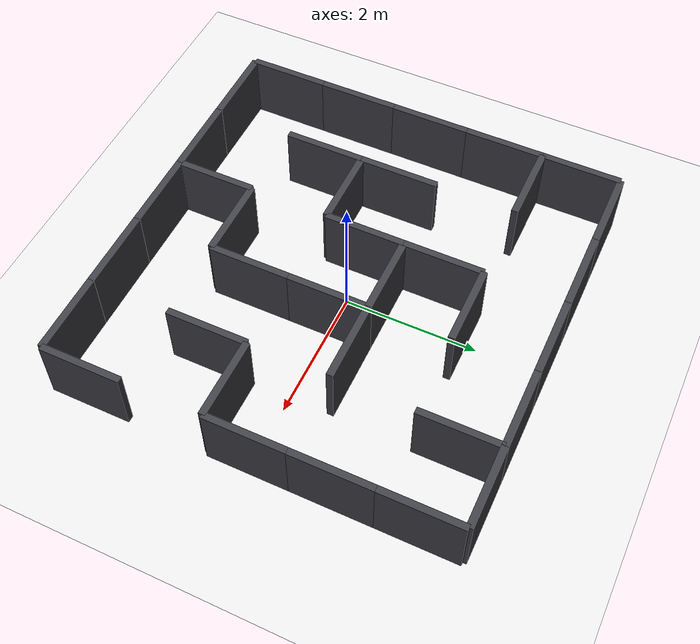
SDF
<?xml version="1.0"?>
<sdf version="1.6">
  <world name="maze_course">

    <!-- ========== Gazebo Sim 系统插件 ========== -->
    <plugin filename="gz-sim-physics-system"
            name="gz::sim::systems::Physics"/>
    <plugin filename="gz-sim-user-commands-system"
            name="gz::sim::systems::UserCommands"/>
    <plugin filename="gz-sim-scene-broadcaster-system"
            name="gz::sim::systems::SceneBroadcaster"/>
    <!-- 相机/激光雷达等渲染传感器必须由 Sensors 系统插件驱动 -->
    <plugin filename="gz-sim-sensors-system"
            name="gz::sim::systems::Sensors">
      <render_engine>ogre2</render_engine>
    </plugin>

    <!-- ========== 物理与光照 ========== -->
    <physics type="ignored">
      <max_step_size>0.001</max_step_size>
      <real_time_factor>1.0</real_time_factor>
    </physics>

    <light name="sun" type="directional">
      <cast_shadows>true</cast_shadows>
      <pose>0 0 10 0 0 0</pose>
      <diffuse>0.8 0.8 0.8 1</diffuse>
      <specular>0.2 0.2 0.2 1</specular>
      <direction>-0.5 0.1 -0.9</direction>
    </light>

    <!-- ========== 地面（浅色，保证视觉阈值法可通行） ========== -->
    <model name="ground_plane">
      <static>true</static>
      <link name="link">
        <collision name="collision">
          <geometry>
            <plane>
              <normal>0 0 1</normal>
              <size>20 20</size>
            </plane>
          </geometry>
        </collision>
        <visual name="visual">
          <geometry>
            <plane>
              <normal>0 0 1</normal>
              <size>20 20</size>
            </plane>
          </geometry>
          <material>
            <ambient>0.9 0.9 0.9 1</ambient>
            <diffuse>0.9 0.9 0.9 1</diffuse>
            <emissive>0.9 0.9 0.9 1</emissive>
          </material>
        </visual>
      </link>
    </model>

    <!-- ========== 迷宫墙体（5x5 完美迷宫，1.2m 走廊，1 个出口） ========== -->
    <!-- 起点格 (0.0, 0.0)；出口在第 (4, 1) 格 E 侧外墙 -->
    <model name="wall_v_0_1">
      <static>true</static>
      <pose>-1.800 -1.200 0.500 0 0 0</pose>
      <link name="link">
        <collision name="c"><geometry><box><size>0.100 1.200 1.000</size></box></geometry></collision>
        <visual name="v">
          <geometry><box><size>0.100 1.200 1.000</size></box></geometry>
          <material><ambient>0.25 0.25 0.28 1</ambient><diffuse>0.25 0.25 0.28 1</diffuse></material>
        </visual>
      </link>
    </model>
    <model name="wall_v_0_2">
      <static>true</static>
      <pose>-1.800 0.000 0.500 0 0 0</pose>
      <link name="link">
        <collision name="c"><geometry><box><size>0.100 1.200 1.000</size></box></geometry></collision>
        <visual name="v">
          <geometry><box><size>0.100 1.200 1.000</size></box></geometry>
          <material><ambient>0.25 0.25 0.28 1</ambient><diffuse>0.25 0.25 0.28 1</diffuse></material>
        </visual>
      </link>
    </model>
    <model name="wall_v_1_0">
      <static>true</static>
      <pose>-0.600 -2.400 0.500 0 0 0</pose>
      <link name="link">
        <collision name="c"><geometry><box><size>0.100 1.200 1.000</size></box></geometry></collision>
        <visual name="v">
          <geometry><box><size>0.100 1.200 1.000</size></box></geometry>
          <material><ambient>0.25 0.25 0.28 1</ambient><diffuse>0.25 0.25 0.28 1</diffuse></material>
        </visual>
      </link>
    </model>
    <model name="wall_v_1_2">
      <static>true</static>
      <pose>-0.600 0.000 0.500 0 0 0</pose>
      <link name="link">
        <collision name="c"><geometry><box><size>0.100 1.200 1.000</size></box></geometry></collision>
        <visual name="v">
          <geometry><box><size>0.100 1.200 1.000</size></box></geometry>
          <material><ambient>0.25 0.25 0.28 1</ambient><diffuse>0.25 0.25 0.28 1</diffuse></material>
        </visual>
      </link>
    </model>
    <model name="wall_v_1_3">
      <static>true</static>
      <pose>-0.600 1.200 0.500 0 0 0</pose>
      <link name="link">
        <collision name="c"><geometry><box><size>0.100 1.200 1.000</size></box></geometry></collision>
        <visual name="v">
          <geometry><box><size>0.100 1.200 1.000</size></box></geometry>
          <material><ambient>0.25 0.25 0.28 1</ambient><diffuse>0.25 0.25 0.28 1</diffuse></material>
        </visual>
      </link>
    </model>
    <model name="wall_v_2_1">
      <static>true</static>
      <pose>0.600 -1.200 0.500 0 0 0</pose>
      <link name="link">
        <collision name="c"><geometry><box><size>0.100 1.200 1.000</size></box></geometry></collision>
        <visual name="v">
          <geometry><box><size>0.100 1.200 1.000</size></box></geometry>
          <material><ambient>0.25 0.25 0.28 1</ambient><diffuse>0.25 0.25 0.28 1</diffuse></material>
        </visual>
      </link>
    </model>
    <model name="wall_v_2_2">
      <static>true</static>
      <pose>0.600 0.000 0.500 0 0 0</pose>
      <link name="link">
        <collision name="c"><geometry><box><size>0.100 1.200 1.000</size></box></geometry></collision>
        <visual name="v">
          <geometry><box><size>0.100 1.200 1.000</size></box></geometry>
          <material><ambient>0.25 0.25 0.28 1</ambient><diffuse>0.25 0.25 0.28 1</diffuse></material>
        </visual>
      </link>
    </model>
    <model name="wall_v_3_1">
      <static>true</static>
      <pose>1.800 -1.200 0.500 0 0 0</pose>
      <link name="link">
        <collision name="c"><geometry><box><size>0.100 1.200 1.000</size></box></geometry></collision>
        <visual name="v">
          <geometry><box><size>0.100 1.200 1.000</size></box></geometry>
          <material><ambient>0.25 0.25 0.28 1</ambient><diffuse>0.25 0.25 0.28 1</diffuse></material>
        </visual>
      </link>
    </model>
    <model name="wall_v_3_4">
      <static>true</static>
      <pose>1.800 2.400 0.500 0 0 0</pose>
      <link name="link">
        <collision name="c"><geometry><box><size>0.100 1.200 1.000</size></box></geometry></collision>
        <visual name="v">
          <geometry><box><size>0.100 1.200 1.000</size></box></geometry>
          <material><ambient>0.25 0.25 0.28 1</ambient><diffuse>0.25 0.25 0.28 1</diffuse></material>
        </visual>
      </link>
    </model>
    <model name="wall_h_0_3">
      <static>true</static>
      <pose>-2.400 1.800 0.500 0 0 0</pose>
      <link name="link">
        <collision name="c"><geometry><box><size>1.200 0.100 1.000</size></box></geometry></collision>
        <visual name="v">
          <geometry><box><size>1.200 0.100 1.000</size></box></geometry>
          <material><ambient>0.25 0.25 0.28 1</ambient><diffuse>0.25 0.25 0.28 1</diffuse></material>
        </visual>
      </link>
    </model>
    <model name="wall_h_1_1">
      <static>true</static>
      <pose>-1.200 -0.600 0.500 0 0 0</pose>
      <link name="link">
        <collision name="c"><geometry><box><size>1.200 0.100 1.000</size></box></geometry></collision>
        <visual name="v">
          <geometry><box><size>1.200 0.100 1.000</size></box></geometry>
          <material><ambient>0.25 0.25 0.28 1</ambient><diffuse>0.25 0.25 0.28 1</diffuse></material>
        </visual>
      </link>
    </model>
    <model name="wall_h_2_0">
      <static>true</static>
      <pose>0.000 -1.800 0.500 0 0 0</pose>
      <link name="link">
        <collision name="c"><geometry><box><size>1.200 0.100 1.000</size></box></geometry></collision>
        <visual name="v">
          <geometry><box><size>1.200 0.100 1.000</size></box></geometry>
          <material><ambient>0.25 0.25 0.28 1</ambient><diffuse>0.25 0.25 0.28 1</diffuse></material>
        </visual>
      </link>
    </model>
    <model name="wall_h_2_2">
      <static>true</static>
      <pose>0.000 0.600 0.500 0 0 0</pose>
      <link name="link">
        <collision name="c"><geometry><box><size>1.200 0.100 1.000</size></box></geometry></collision>
        <visual name="v">
          <geometry><box><size>1.200 0.100 1.000</size></box></geometry>
          <material><ambient>0.25 0.25 0.28 1</ambient><diffuse>0.25 0.25 0.28 1</diffuse></material>
        </visual>
      </link>
    </model>
    <model name="wall_h_2_3">
      <static>true</static>
      <pose>0.000 1.800 0.500 0 0 0</pose>
      <link name="link">
        <collision name="c"><geometry><box><size>1.200 0.100 1.000</size></box></geometry></collision>
        <visual name="v">
          <geometry><box><size>1.200 0.100 1.000</size></box></geometry>
          <material><ambient>0.25 0.25 0.28 1</ambient><diffuse>0.25 0.25 0.28 1</diffuse></material>
        </visual>
      </link>
    </model>
    <model name="wall_h_3_2">
      <static>true</static>
      <pose>1.200 0.600 0.500 0 0 0</pose>
      <link name="link">
        <collision name="c"><geometry><box><size>1.200 0.100 1.000</size></box></geometry></collision>
        <visual name="v">
          <geometry><box><size>1.200 0.100 1.000</size></box></geometry>
          <material><ambient>0.25 0.25 0.28 1</ambient><diffuse>0.25 0.25 0.28 1</diffuse></material>
        </visual>
      </link>
    </model>
    <model name="wall_h_4_1">
      <static>true</static>
      <pose>2.400 -0.600 0.500 0 0 0</pose>
      <link name="link">
        <collision name="c"><geometry><box><size>1.200 0.100 1.000</size></box></geometry></collision>
        <visual name="v">
          <geometry><box><size>1.200 0.100 1.000</size></box></geometry>
          <material><ambient>0.25 0.25 0.28 1</ambient><diffuse>0.25 0.25 0.28 1</diffuse></material>
        </visual>
      </link>
    </model>
    <model name="wall_out_s_0">
      <static>true</static>
      <pose>-2.400 -3.000 0.500 0 0 0</pose>
      <link name="link">
        <collision name="c"><geometry><box><size>1.200 0.100 1.000</size></box></geometry></collision>
        <visual name="v">
          <geometry><box><size>1.200 0.100 1.000</size></box></geometry>
          <material><ambient>0.25 0.25 0.28 1</ambient><diffuse>0.25 0.25 0.28 1</diffuse></material>
        </visual>
      </link>
    </model>
    <model name="wall_out_w_0">
      <static>true</static>
      <pose>-3.000 -2.400 0.500 0 0 0</pose>
      <link name="link">
        <collision name="c"><geometry><box><size>0.100 1.200 1.000</size></box></geometry></collision>
        <visual name="v">
          <geometry><box><size>0.100 1.200 1.000</size></box></geometry>
          <material><ambient>0.25 0.25 0.28 1</ambient><diffuse>0.25 0.25 0.28 1</diffuse></material>
        </visual>
      </link>
    </model>
    <model name="wall_out_w_1">
      <static>true</static>
      <pose>-3.000 -1.200 0.500 0 0 0</pose>
      <link name="link">
        <collision name="c"><geometry><box><size>0.100 1.200 1.000</size></box></geometry></collision>
        <visual name="v">
          <geometry><box><size>0.100 1.200 1.000</size></box></geometry>
          <material><ambient>0.25 0.25 0.28 1</ambient><diffuse>0.25 0.25 0.28 1</diffuse></material>
        </visual>
      </link>
    </model>
    <model name="wall_out_w_2">
      <static>true</static>
      <pose>-3.000 0.000 0.500 0 0 0</pose>
      <link name="link">
        <collision name="c"><geometry><box><size>0.100 1.200 1.000</size></box></geometry></collision>
        <visual name="v">
          <geometry><box><size>0.100 1.200 1.000</size></box></geometry>
          <material><ambient>0.25 0.25 0.28 1</ambient><diffuse>0.25 0.25 0.28 1</diffuse></material>
        </visual>
      </link>
    </model>
    <model name="wall_out_w_3">
      <static>true</static>
      <pose>-3.000 1.200 0.500 0 0 0</pose>
      <link name="link">
        <collision name="c"><geometry><box><size>0.100 1.200 1.000</size></box></geometry></collision>
        <visual name="v">
          <geometry><box><size>0.100 1.200 1.000</size></box></geometry>
          <material><ambient>0.25 0.25 0.28 1</ambient><diffuse>0.25 0.25 0.28 1</diffuse></material>
        </visual>
      </link>
    </model>
    <model name="wall_out_n_0">
      <static>true</static>
      <pose>-2.400 3.000 0.500 0 0 0</pose>
      <link name="link">
        <collision name="c"><geometry><box><size>1.200 0.100 1.000</size></box></geometry></collision>
        <visual name="v">
          <geometry><box><size>1.200 0.100 1.000</size></box></geometry>
          <material><ambient>0.25 0.25 0.28 1</ambient><diffuse>0.25 0.25 0.28 1</diffuse></material>
        </visual>
      </link>
    </model>
    <model name="wall_out_w_4">
      <static>true</static>
      <pose>-3.000 2.400 0.500 0 0 0</pose>
      <link name="link">
        <collision name="c"><geometry><box><size>0.100 1.200 1.000</size></box></geometry></collision>
        <visual name="v">
          <geometry><box><size>0.100 1.200 1.000</size></box></geometry>
          <material><ambient>0.25 0.25 0.28 1</ambient><diffuse>0.25 0.25 0.28 1</diffuse></material>
        </visual>
      </link>
    </model>
    <model name="wall_out_s_1">
      <static>true</static>
      <pose>-1.200 -3.000 0.500 0 0 0</pose>
      <link name="link">
        <collision name="c"><geometry><box><size>1.200 0.100 1.000</size></box></geometry></collision>
        <visual name="v">
          <geometry><box><size>1.200 0.100 1.000</size></box></geometry>
          <material><ambient>0.25 0.25 0.28 1</ambient><diffuse>0.25 0.25 0.28 1</diffuse></material>
        </visual>
      </link>
    </model>
    <model name="wall_out_n_1">
      <static>true</static>
      <pose>-1.200 3.000 0.500 0 0 0</pose>
      <link name="link">
        <collision name="c"><geometry><box><size>1.200 0.100 1.000</size></box></geometry></collision>
        <visual name="v">
          <geometry><box><size>1.200 0.100 1.000</size></box></geometry>
          <material><ambient>0.25 0.25 0.28 1</ambient><diffuse>0.25 0.25 0.28 1</diffuse></material>
        </visual>
      </link>
    </model>
    <model name="wall_out_s_2">
      <static>true</static>
      <pose>0.000 -3.000 0.500 0 0 0</pose>
      <link name="link">
        <collision name="c"><geometry><box><size>1.200 0.100 1.000</size></box></geometry></collision>
        <visual name="v">
          <geometry><box><size>1.200 0.100 1.000</size></box></geometry>
          <material><ambient>0.25 0.25 0.28 1</ambient><diffuse>0.25 0.25 0.28 1</diffuse></material>
        </visual>
      </link>
    </model>
    <model name="wall_out_n_2">
      <static>true</static>
      <pose>0.000 3.000 0.500 0 0 0</pose>
      <link name="link">
        <collision name="c"><geometry><box><size>1.200 0.100 1.000</size></box></geometry></collision>
        <visual name="v">
          <geometry><box><size>1.200 0.100 1.000</size></box></geometry>
          <material><ambient>0.25 0.25 0.28 1</ambient><diffuse>0.25 0.25 0.28 1</diffuse></material>
        </visual>
      </link>
    </model>
    <model name="wall_out_s_3">
      <static>true</static>
      <pose>1.200 -3.000 0.500 0 0 0</pose>
      <link name="link">
        <collision name="c"><geometry><box><size>1.200 0.100 1.000</size></box></geometry></collision>
        <visual name="v">
          <geometry><box><size>1.200 0.100 1.000</size></box></geometry>
          <material><ambient>0.25 0.25 0.28 1</ambient><diffuse>0.25 0.25 0.28 1</diffuse></material>
        </visual>
      </link>
    </model>
    <model name="wall_out_n_3">
      <static>true</static>
      <pose>1.200 3.000 0.500 0 0 0</pose>
      <link name="link">
        <collision name="c"><geometry><box><size>1.200 0.100 1.000</size></box></geometry></collision>
        <visual name="v">
          <geometry><box><size>1.200 0.100 1.000</size></box></geometry>
          <material><ambient>0.25 0.25 0.28 1</ambient><diffuse>0.25 0.25 0.28 1</diffuse></material>
        </visual>
      </link>
    </model>
    <model name="wall_out_s_4">
      <static>true</static>
      <pose>2.400 -3.000 0.500 0 0 0</pose>
      <link name="link">
        <collision name="c"><geometry><box><size>1.200 0.100 1.000</size></box></geometry></collision>
        <visual name="v">
          <geometry><box><size>1.200 0.100 1.000</size></box></geometry>
          <material><ambient>0.25 0.25 0.28 1</ambient><diffuse>0.25 0.25 0.28 1</diffuse></material>
        </visual>
      </link>
    </model>
    <model name="wall_out_e_0">
      <static>true</static>
      <pose>3.000 -2.400 0.500 0 0 0</pose>
      <link name="link">
        <collision name="c"><geometry><box><size>0.100 1.200 1.000</size></box></geometry></collision>
        <visual name="v">
          <geometry><box><size>0.100 1.200 1.000</size></box></geometry>
          <material><ambient>0.25 0.25 0.28 1</ambient><diffuse>0.25 0.25 0.28 1</diffuse></material>
        </visual>
      </link>
    </model>
    <model name="wall_out_e_2">
      <static>true</static>
      <pose>3.000 0.000 0.500 0 0 0</pose>
      <link name="link">
        <collision name="c"><geometry><box><size>0.100 1.200 1.000</size></box></geometry></collision>
        <visual name="v">
          <geometry><box><size>0.100 1.200 1.000</size></box></geometry>
          <material><ambient>0.25 0.25 0.28 1</ambient><diffuse>0.25 0.25 0.28 1</diffuse></material>
        </visual>
      </link>
    </model>
    <model name="wall_out_e_3">
      <static>true</static>
      <pose>3.000 1.200 0.500 0 0 0</pose>
      <link name="link">
        <collision name="c"><geometry><box><size>0.100 1.200 1.000</size></box></geometry></collision>
        <visual name="v">
          <geometry><box><size>0.100 1.200 1.000</size></box></geometry>
          <material><ambient>0.25 0.25 0.28 1</ambient><diffuse>0.25 0.25 0.28 1</diffuse></material>
        </visual>
      </link>
    </model>
    <model name="wall_out_n_4">
      <static>true</static>
      <pose>2.400 3.000 0.500 0 0 0</pose>
      <link name="link">
        <collision name="c"><geometry><box><size>1.200 0.100 1.000</size></box></geometry></collision>
        <visual name="v">
          <geometry><box><size>1.200 0.100 1.000</size></box></geometry>
          <material><ambient>0.25 0.25 0.28 1</ambient><diffuse>0.25 0.25 0.28 1</diffuse></material>
        </visual>
      </link>
    </model>
    <model name="wall_out_e_4">
      <static>true</static>
      <pose>3.000 2.400 0.500 0 0 0</pose>
      <link name="link">
        <collision name="c"><geometry><box><size>0.100 1.200 1.000</size></box></geometry></collision>
        <visual name="v">
          <geometry><box><size>0.100 1.200 1.000</size></box></geometry>
          <material><ambient>0.25 0.25 0.28 1</ambient><diffuse>0.25 0.25 0.28 1</diffuse></material>
        </visual>
      </link>
    </model>

  </world>
</sdf>
